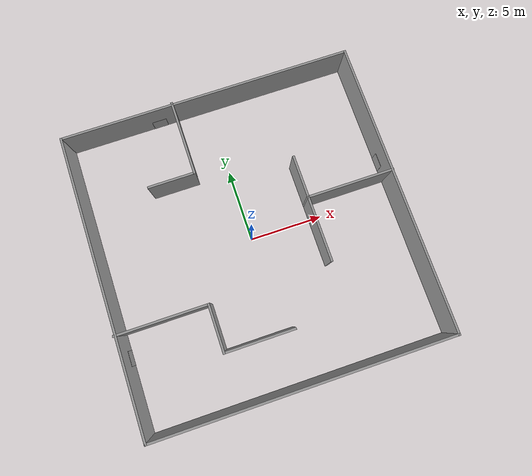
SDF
<?xml version='1.0'?>
<sdf version='1.7'>
  <model name='laboratorio'>
    <link name='Wall_11'>
      <pose>0.044936 9.95132 0 0 -0 0</pose>
      <self_collide>0</self_collide>
      <enable_wind>0</enable_wind>
      <kinematic>0</kinematic>
      <visual name='Wall_11_Visual'>
        <pose>0 0 1.25 0 -0 0</pose>
        <geometry>
          <box>
            <size>20.15 0.15 2.5</size>
          </box>
        </geometry>
        <material>
          <script>
            <uri>file://media/materials/scripts/gazebo.material</uri>
            <name>Gazebo/Grey</name>
          </script>
          <ambient>1 1 1 1</ambient>
          <shader type='pixel'/>
        </material>
        <meta>
          <layer>0</layer>
        </meta>
        <transparency>0</transparency>
        <cast_shadows>1</cast_shadows>
      </visual>
      <collision name='Wall_11_Collision'>
        <laser_retro>0</laser_retro>
        <max_contacts>10</max_contacts>
        <pose>0 0 1.25 0 -0 0</pose>
        <geometry>
          <box>
            <size>20.15 0.15 2.5</size>
          </box>
        </geometry>
        <surface>
          <friction>
            <ode>
              <mu>1</mu>
              <mu2>1</mu2>
              <fdir1>0 0 0</fdir1>
              <slip1>0</slip1>
              <slip2>0</slip2>
            </ode>
            <torsional>
              <coefficient>1</coefficient>
              <patch_radius>0</patch_radius>
              <surface_radius>0</surface_radius>
              <use_patch_radius>1</use_patch_radius>
              <ode>
                <slip>0</slip>
              </ode>
            </torsional>
          </friction>
          <bounce>
            <restitution_coefficient>0</restitution_coefficient>
            <threshold>1e+06</threshold>
          </bounce>
          <contact>
            <collide_without_contact>0</collide_without_contact>
            <collide_without_contact_bitmask>1</collide_without_contact_bitmask>
            <collide_bitmask>1</collide_bitmask>
            <ode>
              <soft_cfm>0</soft_cfm>
              <soft_erp>0.2</soft_erp>
              <kp>1e+13</kp>
              <kd>1</kd>
              <max_vel>0.01</max_vel>
              <min_depth>0</min_depth>
            </ode>
            <bullet>
              <split_impulse>1</split_impulse>
              <split_impulse_penetration_threshold>-0.01</split_impulse_penetration_threshold>
              <soft_cfm>0</soft_cfm>
              <soft_erp>0.2</soft_erp>
              <kp>1e+13</kp>
              <kd>1</kd>
            </bullet>
          </contact>
        </surface>
      </collision>
    </link>
    <link name='Wall_12'>
      <pose>10.0449 -0.048679 0 0 0 -1.5708</pose>
      <self_collide>0</self_collide>
      <enable_wind>0</enable_wind>
      <kinematic>0</kinematic>
      <gravity>1</gravity>
      <inertial>
        <mass>1</mass>
        <pose>0 0 0 0 -0 0</pose>
        <inertia>
          <ixx>1</ixx>
          <ixy>0</ixy>
          <ixz>0</ixz>
          <iyy>1</iyy>
          <iyz>0</iyz>
          <izz>1</izz>
        </inertia>
      </inertial>
      <visual name='Wall_12_Visual'>
        <pose>0 0 1.25 0 -0 0</pose>
        <geometry>
          <box>
            <size>20.15 0.15 2.5</size>
          </box>
        </geometry>
        <material>
          <script>
            <uri>file://media/materials/scripts/gazebo.material</uri>
            <name>Gazebo/Grey</name>
          </script>
          <ambient>1 1 1 1</ambient>
          <shader type='pixel'>
            <normal_map>__default__</normal_map>
          </shader>
        </material>
        <meta>
          <layer>0</layer>
        </meta>
        <transparency>0</transparency>
        <cast_shadows>1</cast_shadows>
      </visual>
      <collision name='Wall_12_Collision'>
        <laser_retro>0</laser_retro>
        <max_contacts>10</max_contacts>
        <pose>0 0 1.25 0 -0 0</pose>
        <geometry>
          <box>
            <size>20.15 0.15 2.5</size>
          </box>
        </geometry>
        <surface>
          <friction>
            <ode>
              <mu>1</mu>
              <mu2>1</mu2>
              <fdir1>0 0 0</fdir1>
              <slip1>0</slip1>
              <slip2>0</slip2>
            </ode>
            <torsional>
              <coefficient>1</coefficient>
              <patch_radius>0</patch_radius>
              <surface_radius>0</surface_radius>
              <use_patch_radius>1</use_patch_radius>
              <ode>
                <slip>0</slip>
              </ode>
            </torsional>
          </friction>
          <bounce>
            <restitution_coefficient>0</restitution_coefficient>
            <threshold>1e+06</threshold>
          </bounce>
          <contact>
            <collide_without_contact>0</collide_without_contact>
            <collide_without_contact_bitmask>1</collide_without_contact_bitmask>
            <collide_bitmask>1</collide_bitmask>
            <ode>
              <soft_cfm>0</soft_cfm>
              <soft_erp>0.2</soft_erp>
              <kp>1e+13</kp>
              <kd>1</kd>
              <max_vel>0.01</max_vel>
              <min_depth>0</min_depth>
            </ode>
            <bullet>
              <split_impulse>1</split_impulse>
              <split_impulse_penetration_threshold>-0.01</split_impulse_penetration_threshold>
              <soft_cfm>0</soft_cfm>
              <soft_erp>0.2</soft_erp>
              <kp>1e+13</kp>
              <kd>1</kd>
            </bullet>
          </contact>
        </surface>
      </collision>
    </link>
    <link name='Wall_14'>
      <pose>-7.01194 -3.43073 0 0 -0 0</pose>
      <self_collide>0</self_collide>
      <enable_wind>0</enable_wind>
      <kinematic>0</kinematic>
      <visual name='Wall_14_Visual'>
        <pose>0 0 1.25 0 -0 0</pose>
        <geometry>
          <box>
            <size>6.25 0.15 2.5</size>
          </box>
        </geometry>
        <material>
          <script>
            <uri>file://media/materials/scripts/gazebo.material</uri>
            <name>Gazebo/Grey</name>
          </script>
          <ambient>1 1 1 1</ambient>
          <shader type='pixel'/>
        </material>
        <meta>
          <layer>0</layer>
        </meta>
        <transparency>0</transparency>
        <cast_shadows>1</cast_shadows>
      </visual>
      <collision name='Wall_14_Collision'>
        <laser_retro>0</laser_retro>
        <max_contacts>10</max_contacts>
        <pose>0 0 1.25 0 -0 0</pose>
        <geometry>
          <box>
            <size>6.25 0.15 2.5</size>
          </box>
        </geometry>
        <surface>
          <friction>
            <ode>
              <mu>1</mu>
              <mu2>1</mu2>
              <fdir1>0 0 0</fdir1>
              <slip1>0</slip1>
              <slip2>0</slip2>
            </ode>
            <torsional>
              <coefficient>1</coefficient>
              <patch_radius>0</patch_radius>
              <surface_radius>0</surface_radius>
              <use_patch_radius>1</use_patch_radius>
              <ode>
                <slip>0</slip>
              </ode>
            </torsional>
          </friction>
          <bounce>
            <restitution_coefficient>0</restitution_coefficient>
            <threshold>1e+06</threshold>
          </bounce>
          <contact>
            <collide_without_contact>0</collide_without_contact>
            <collide_without_contact_bitmask>1</collide_without_contact_bitmask>
            <collide_bitmask>1</collide_bitmask>
            <ode>
              <soft_cfm>0</soft_cfm>
              <soft_erp>0.2</soft_erp>
              <kp>1e+13</kp>
              <kd>1</kd>
              <max_vel>0.01</max_vel>
              <min_depth>0</min_depth>
            </ode>
            <bullet>
              <split_impulse>1</split_impulse>
              <split_impulse_penetration_threshold>-0.01</split_impulse_penetration_threshold>
              <soft_cfm>0</soft_cfm>
              <soft_erp>0.2</soft_erp>
              <kp>1e+13</kp>
              <kd>1</kd>
            </bullet>
          </contact>
        </surface>
      </collision>
    </link>
    <link name='Wall_15'>
      <pose>-3.96194 -4.98073 0 0 0 -1.5708</pose>
      <self_collide>0</self_collide>
      <enable_wind>0</enable_wind>
      <kinematic>0</kinematic>
      <gravity>1</gravity>
      <inertial>
        <mass>1</mass>
        <pose>0 0 0 0 -0 0</pose>
        <inertia>
          <ixx>1</ixx>
          <ixy>0</ixy>
          <ixz>0</ixz>
          <iyy>1</iyy>
          <iyz>0</iyz>
          <izz>1</izz>
        </inertia>
      </inertial>
      <visual name='Wall_15_Visual'>
        <pose>0 0 1.25 0 -0 0</pose>
        <geometry>
          <box>
            <size>3.25 0.15 2.5</size>
          </box>
        </geometry>
        <material>
          <script>
            <uri>file://media/materials/scripts/gazebo.material</uri>
            <name>Gazebo/Grey</name>
          </script>
          <ambient>1 1 1 1</ambient>
          <shader type='pixel'>
            <normal_map>__default__</normal_map>
          </shader>
        </material>
        <meta>
          <layer>0</layer>
        </meta>
        <transparency>0</transparency>
        <cast_shadows>1</cast_shadows>
      </visual>
      <collision name='Wall_15_Collision'>
        <laser_retro>0</laser_retro>
        <max_contacts>10</max_contacts>
        <pose>0 0 1.25 0 -0 0</pose>
        <geometry>
          <box>
            <size>3.25 0.15 2.5</size>
          </box>
        </geometry>
        <surface>
          <friction>
            <ode>
              <mu>1</mu>
              <mu2>1</mu2>
              <fdir1>0 0 0</fdir1>
              <slip1>0</slip1>
              <slip2>0</slip2>
            </ode>
            <torsional>
              <coefficient>1</coefficient>
              <patch_radius>0</patch_radius>
              <surface_radius>0</surface_radius>
              <use_patch_radius>1</use_patch_radius>
              <ode>
                <slip>0</slip>
              </ode>
            </torsional>
          </friction>
          <bounce>
            <restitution_coefficient>0</restitution_coefficient>
            <threshold>1e+06</threshold>
          </bounce>
          <contact>
            <collide_without_contact>0</collide_without_contact>
            <collide_without_contact_bitmask>1</collide_without_contact_bitmask>
            <collide_bitmask>1</collide_bitmask>
            <ode>
              <soft_cfm>0</soft_cfm>
              <soft_erp>0.2</soft_erp>
              <kp>1e+13</kp>
              <kd>1</kd>
              <max_vel>0.01</max_vel>
              <min_depth>0</min_depth>
            </ode>
            <bullet>
              <split_impulse>1</split_impulse>
              <split_impulse_penetration_threshold>-0.01</split_impulse_penetration_threshold>
              <soft_cfm>0</soft_cfm>
              <soft_erp>0.2</soft_erp>
              <kp>1e+13</kp>
              <kd>1</kd>
            </bullet>
          </contact>
        </surface>
      </collision>
    </link>
    <link name='Wall_16'>
      <pose>-1.66194 -6.53073 0 0 -0 0</pose>
      <self_collide>0</self_collide>
      <enable_wind>0</enable_wind>
      <kinematic>0</kinematic>
      <visual name='Wall_16_Visual'>
        <pose>0 0 1.25 0 -0 0</pose>
        <geometry>
          <box>
            <size>4.75 0.15 2.5</size>
          </box>
        </geometry>
        <material>
          <script>
            <uri>file://media/materials/scripts/gazebo.material</uri>
            <name>Gazebo/Grey</name>
          </script>
          <ambient>1 1 1 1</ambient>
          <shader type='pixel'/>
        </material>
        <meta>
          <layer>0</layer>
        </meta>
        <transparency>0</transparency>
        <cast_shadows>1</cast_shadows>
      </visual>
      <collision name='Wall_16_Collision'>
        <laser_retro>0</laser_retro>
        <max_contacts>10</max_contacts>
        <pose>0 0 1.25 0 -0 0</pose>
        <geometry>
          <box>
            <size>4.75 0.15 2.5</size>
          </box>
        </geometry>
        <surface>
          <friction>
            <ode>
              <mu>1</mu>
              <mu2>1</mu2>
              <fdir1>0 0 0</fdir1>
              <slip1>0</slip1>
              <slip2>0</slip2>
            </ode>
            <torsional>
              <coefficient>1</coefficient>
              <patch_radius>0</patch_radius>
              <surface_radius>0</surface_radius>
              <use_patch_radius>1</use_patch_radius>
              <ode>
                <slip>0</slip>
              </ode>
            </torsional>
          </friction>
          <bounce>
            <restitution_coefficient>0</restitution_coefficient>
            <threshold>1e+06</threshold>
          </bounce>
          <contact>
            <collide_without_contact>0</collide_without_contact>
            <collide_without_contact_bitmask>1</collide_without_contact_bitmask>
            <collide_bitmask>1</collide_bitmask>
            <ode>
              <soft_cfm>0</soft_cfm>
              <soft_erp>0.2</soft_erp>
              <kp>1e+13</kp>
              <kd>1</kd>
              <max_vel>0.01</max_vel>
              <min_depth>0</min_depth>
            </ode>
            <bullet>
              <split_impulse>1</split_impulse>
              <split_impulse_penetration_threshold>-0.01</split_impulse_penetration_threshold>
              <soft_cfm>0</soft_cfm>
              <soft_erp>0.2</soft_erp>
              <kp>1e+13</kp>
              <kd>1</kd>
            </bullet>
          </contact>
        </surface>
      </collision>
    </link>
    <link name='Wall_18'>
      <pose>7.13694 1.06632 0 0 -0 3.14159</pose>
      <self_collide>0</self_collide>
      <enable_wind>0</enable_wind>
      <kinematic>0</kinematic>
      <visual name='Wall_18_Visual'>
        <pose>0 0 1.25 0 -0 0</pose>
        <geometry>
          <box>
            <size>6 0.15 2.5</size>
          </box>
        </geometry>
        <material>
          <script>
            <uri>file://media/materials/scripts/gazebo.material</uri>
            <name>Gazebo/Grey</name>
          </script>
          <ambient>1 1 1 1</ambient>
          <shader type='pixel'/>
        </material>
        <meta>
          <layer>0</layer>
        </meta>
        <transparency>0</transparency>
        <cast_shadows>1</cast_shadows>
      </visual>
      <collision name='Wall_18_Collision'>
        <laser_retro>0</laser_retro>
        <max_contacts>10</max_contacts>
        <pose>0 0 1.25 0 -0 0</pose>
        <geometry>
          <box>
            <size>6 0.15 2.5</size>
          </box>
        </geometry>
        <surface>
          <friction>
            <ode>
              <mu>1</mu>
              <mu2>1</mu2>
              <fdir1>0 0 0</fdir1>
              <slip1>0</slip1>
              <slip2>0</slip2>
            </ode>
            <torsional>
              <coefficient>1</coefficient>
              <patch_radius>0</patch_radius>
              <surface_radius>0</surface_radius>
              <use_patch_radius>1</use_patch_radius>
              <ode>
                <slip>0</slip>
              </ode>
            </torsional>
          </friction>
          <bounce>
            <restitution_coefficient>0</restitution_coefficient>
            <threshold>1e+06</threshold>
          </bounce>
          <contact>
            <collide_without_contact>0</collide_without_contact>
            <collide_without_contact_bitmask>1</collide_without_contact_bitmask>
            <collide_bitmask>1</collide_bitmask>
            <ode>
              <soft_cfm>0</soft_cfm>
              <soft_erp>0.2</soft_erp>
              <kp>1e+13</kp>
              <kd>1</kd>
              <max_vel>0.01</max_vel>
              <min_depth>0</min_depth>
            </ode>
            <bullet>
              <split_impulse>1</split_impulse>
              <split_impulse_penetration_threshold>-0.01</split_impulse_penetration_threshold>
              <soft_cfm>0</soft_cfm>
              <soft_erp>0.2</soft_erp>
              <kp>1e+13</kp>
              <kd>1</kd>
            </bullet>
          </contact>
        </surface>
      </collision>
    </link>
    <link name='Wall_22'>
      <pose>-2.28499 7.49868 0 0 0 -1.5708</pose>
      <self_collide>0</self_collide>
      <enable_wind>0</enable_wind>
      <kinematic>0</kinematic>
      <visual name='Wall_22_Visual'>
        <pose>0 0 1.25 0 -0 0</pose>
        <geometry>
          <box>
            <size>5.25 0.15 2.5</size>
          </box>
        </geometry>
        <material>
          <script>
            <uri>file://media/materials/scripts/gazebo.material</uri>
            <name>Gazebo/Grey</name>
          </script>
          <ambient>1 1 1 1</ambient>
          <shader type='pixel'/>
        </material>
        <meta>
          <layer>0</layer>
        </meta>
        <transparency>0</transparency>
        <cast_shadows>1</cast_shadows>
      </visual>
      <collision name='Wall_22_Collision'>
        <laser_retro>0</laser_retro>
        <max_contacts>10</max_contacts>
        <pose>0 0 1.25 0 -0 0</pose>
        <geometry>
          <box>
            <size>5.25 0.15 2.5</size>
          </box>
        </geometry>
        <surface>
          <friction>
            <ode>
              <mu>1</mu>
              <mu2>1</mu2>
              <fdir1>0 0 0</fdir1>
              <slip1>0</slip1>
              <slip2>0</slip2>
            </ode>
            <torsional>
              <coefficient>1</coefficient>
              <patch_radius>0</patch_radius>
              <surface_radius>0</surface_radius>
              <use_patch_radius>1</use_patch_radius>
              <ode>
                <slip>0</slip>
              </ode>
            </torsional>
          </friction>
          <bounce>
            <restitution_coefficient>0</restitution_coefficient>
            <threshold>1e+06</threshold>
          </bounce>
          <contact>
            <collide_without_contact>0</collide_without_contact>
            <collide_without_contact_bitmask>1</collide_without_contact_bitmask>
            <collide_bitmask>1</collide_bitmask>
            <ode>
              <soft_cfm>0</soft_cfm>
              <soft_erp>0.2</soft_erp>
              <kp>1e+13</kp>
              <kd>1</kd>
              <max_vel>0.01</max_vel>
              <min_depth>0</min_depth>
            </ode>
            <bullet>
              <split_impulse>1</split_impulse>
              <split_impulse_penetration_threshold>-0.01</split_impulse_penetration_threshold>
              <soft_cfm>0</soft_cfm>
              <soft_erp>0.2</soft_erp>
              <kp>1e+13</kp>
              <kd>1</kd>
            </bullet>
          </contact>
        </surface>
      </collision>
    </link>
    <link name='Wall_23'>
      <pose>-3.83499 4.94868 0 0 -0 3.14159</pose>
      <self_collide>0</self_collide>
      <enable_wind>0</enable_wind>
      <kinematic>0</kinematic>
      <visual name='Wall_23_Visual'>
        <pose>0 0 1.25 0 -0 0</pose>
        <geometry>
          <box>
            <size>3.25 0.15 2.5</size>
          </box>
        </geometry>
        <material>
          <script>
            <uri>file://media/materials/scripts/gazebo.material</uri>
            <name>Gazebo/Grey</name>
          </script>
          <ambient>1 1 1 1</ambient>
          <shader type='pixel'/>
        </material>
        <meta>
          <layer>0</layer>
        </meta>
        <transparency>0</transparency>
        <cast_shadows>1</cast_shadows>
      </visual>
      <collision name='Wall_23_Collision'>
        <laser_retro>0</laser_retro>
        <max_contacts>10</max_contacts>
        <pose>0 0 1.25 0 -0 0</pose>
        <geometry>
          <box>
            <size>3.25 0.15 2.5</size>
          </box>
        </geometry>
        <surface>
          <friction>
            <ode>
              <mu>1</mu>
              <mu2>1</mu2>
              <fdir1>0 0 0</fdir1>
              <slip1>0</slip1>
              <slip2>0</slip2>
            </ode>
            <torsional>
              <coefficient>1</coefficient>
              <patch_radius>0</patch_radius>
              <surface_radius>0</surface_radius>
              <use_patch_radius>1</use_patch_radius>
              <ode>
                <slip>0</slip>
              </ode>
            </torsional>
          </friction>
          <bounce>
            <restitution_coefficient>0</restitution_coefficient>
            <threshold>1e+06</threshold>
          </bounce>
          <contact>
            <collide_without_contact>0</collide_without_contact>
            <collide_without_contact_bitmask>1</collide_without_contact_bitmask>
            <collide_bitmask>1</collide_bitmask>
            <ode>
              <soft_cfm>0</soft_cfm>
              <soft_erp>0.2</soft_erp>
              <kp>1e+13</kp>
              <kd>1</kd>
              <max_vel>0.01</max_vel>
              <min_depth>0</min_depth>
            </ode>
            <bullet>
              <split_impulse>1</split_impulse>
              <split_impulse_penetration_threshold>-0.01</split_impulse_penetration_threshold>
              <soft_cfm>0</soft_cfm>
              <soft_erp>0.2</soft_erp>
              <kp>1e+13</kp>
              <kd>1</kd>
            </bullet>
          </contact>
        </surface>
      </collision>
    </link>
    <link name='Wall_27'>
      <pose>4.21194 -1.10868 0 0 0 -1.5708</pose>
      <self_collide>0</self_collide>
      <enable_wind>0</enable_wind>
      <kinematic>0</kinematic>
      <visual name='Wall_27_Visual'>
        <pose>0 0 1.25 0 -0 0</pose>
        <geometry>
          <box>
            <size>4.5 0.15 2.5</size>
          </box>
        </geometry>
        <material>
          <script>
            <uri>file://media/materials/scripts/gazebo.material</uri>
            <name>Gazebo/Grey</name>
          </script>
          <ambient>1 1 1 1</ambient>
          <shader type='pixel'/>
        </material>
        <meta>
          <layer>0</layer>
        </meta>
        <transparency>0</transparency>
        <cast_shadows>1</cast_shadows>
      </visual>
      <collision name='Wall_27_Collision'>
        <laser_retro>0</laser_retro>
        <max_contacts>10</max_contacts>
        <pose>0 0 1.25 0 -0 0</pose>
        <geometry>
          <box>
            <size>4.5 0.15 2.5</size>
          </box>
        </geometry>
        <surface>
          <friction>
            <ode>
              <mu>1</mu>
              <mu2>1</mu2>
              <fdir1>0 0 0</fdir1>
              <slip1>0</slip1>
              <slip2>0</slip2>
            </ode>
            <torsional>
              <coefficient>1</coefficient>
              <patch_radius>0</patch_radius>
              <surface_radius>0</surface_radius>
              <use_patch_radius>1</use_patch_radius>
              <ode>
                <slip>0</slip>
              </ode>
            </torsional>
          </friction>
          <bounce>
            <restitution_coefficient>0</restitution_coefficient>
            <threshold>1e+06</threshold>
          </bounce>
          <contact>
            <collide_without_contact>0</collide_without_contact>
            <collide_without_contact_bitmask>1</collide_without_contact_bitmask>
            <collide_bitmask>1</collide_bitmask>
            <ode>
              <soft_cfm>0</soft_cfm>
              <soft_erp>0.2</soft_erp>
              <kp>1e+13</kp>
              <kd>1</kd>
              <max_vel>0.01</max_vel>
              <min_depth>0</min_depth>
            </ode>
            <bullet>
              <split_impulse>1</split_impulse>
              <split_impulse_penetration_threshold>-0.01</split_impulse_penetration_threshold>
              <soft_cfm>0</soft_cfm>
              <soft_erp>0.2</soft_erp>
              <kp>1e+13</kp>
              <kd>1</kd>
            </bullet>
          </contact>
        </surface>
      </collision>
    </link>
    <link name='Wall_29'>
      <pose>4.21194 2.49132 0 0 -0 1.5708</pose>
      <self_collide>0</self_collide>
      <enable_wind>0</enable_wind>
      <kinematic>0</kinematic>
      <visual name='Wall_29_Visual'>
        <pose>0 0 1.25 0 -0 0</pose>
        <geometry>
          <box>
            <size>3 0.15 2.5</size>
          </box>
        </geometry>
        <material>
          <script>
            <uri>file://media/materials/scripts/gazebo.material</uri>
            <name>Gazebo/Grey</name>
          </script>
          <ambient>1 1 1 1</ambient>
          <shader type='pixel'/>
        </material>
        <meta>
          <layer>0</layer>
        </meta>
        <transparency>0</transparency>
        <cast_shadows>1</cast_shadows>
      </visual>
      <collision name='Wall_29_Collision'>
        <laser_retro>0</laser_retro>
        <max_contacts>10</max_contacts>
        <pose>0 0 1.25 0 -0 0</pose>
        <geometry>
          <box>
            <size>3 0.15 2.5</size>
          </box>
        </geometry>
        <surface>
          <friction>
            <ode>
              <mu>1</mu>
              <mu2>1</mu2>
              <fdir1>0 0 0</fdir1>
              <slip1>0</slip1>
              <slip2>0</slip2>
            </ode>
            <torsional>
              <coefficient>1</coefficient>
              <patch_radius>0</patch_radius>
              <surface_radius>0</surface_radius>
              <use_patch_radius>1</use_patch_radius>
              <ode>
                <slip>0</slip>
              </ode>
            </torsional>
          </friction>
          <bounce>
            <restitution_coefficient>0</restitution_coefficient>
            <threshold>1e+06</threshold>
          </bounce>
          <contact>
            <collide_without_contact>0</collide_without_contact>
            <collide_without_contact_bitmask>1</collide_without_contact_bitmask>
            <collide_bitmask>1</collide_bitmask>
            <ode>
              <soft_cfm>0</soft_cfm>
              <soft_erp>0.2</soft_erp>
              <kp>1e+13</kp>
              <kd>1</kd>
              <max_vel>0.01</max_vel>
              <min_depth>0</min_depth>
            </ode>
            <bullet>
              <split_impulse>1</split_impulse>
              <split_impulse_penetration_threshold>-0.01</split_impulse_penetration_threshold>
              <soft_cfm>0</soft_cfm>
              <soft_erp>0.2</soft_erp>
              <kp>1e+13</kp>
              <kd>1</kd>
            </bullet>
          </contact>
        </surface>
      </collision>
    </link>
    <link name='Wall_4'>
      <pose>-9.95506 -0.048679 0 0 0 -1.5708</pose>
      <self_collide>0</self_collide>
      <enable_wind>0</enable_wind>
      <kinematic>0</kinematic>
      <visual name='Wall_4_Visual'>
        <pose>0 0 1.25 0 -0 0</pose>
        <geometry>
          <box>
            <size>20.15 0.15 2.5</size>
          </box>
        </geometry>
        <material>
          <script>
            <uri>file://media/materials/scripts/gazebo.material</uri>
            <name>Gazebo/Grey</name>
          </script>
          <ambient>1 1 1 1</ambient>
          <shader type='pixel'/>
        </material>
        <meta>
          <layer>0</layer>
        </meta>
        <transparency>0</transparency>
        <cast_shadows>1</cast_shadows>
      </visual>
      <collision name='Wall_4_Collision'>
        <laser_retro>0</laser_retro>
        <max_contacts>10</max_contacts>
        <pose>0 0 1.25 0 -0 0</pose>
        <geometry>
          <box>
            <size>20.15 0.15 2.5</size>
          </box>
        </geometry>
        <surface>
          <friction>
            <ode>
              <mu>1</mu>
              <mu2>1</mu2>
              <fdir1>0 0 0</fdir1>
              <slip1>0</slip1>
              <slip2>0</slip2>
            </ode>
            <torsional>
              <coefficient>1</coefficient>
              <patch_radius>0</patch_radius>
              <surface_radius>0</surface_radius>
              <use_patch_radius>1</use_patch_radius>
              <ode>
                <slip>0</slip>
              </ode>
            </torsional>
          </friction>
          <bounce>
            <restitution_coefficient>0</restitution_coefficient>
            <threshold>1e+06</threshold>
          </bounce>
          <contact>
            <collide_without_contact>0</collide_without_contact>
            <collide_without_contact_bitmask>1</collide_without_contact_bitmask>
            <collide_bitmask>1</collide_bitmask>
            <ode>
              <soft_cfm>0</soft_cfm>
              <soft_erp>0.2</soft_erp>
              <kp>1e+13</kp>
              <kd>1</kd>
              <max_vel>0.01</max_vel>
              <min_depth>0</min_depth>
            </ode>
            <bullet>
              <split_impulse>1</split_impulse>
              <split_impulse_penetration_threshold>-0.01</split_impulse_penetration_threshold>
              <soft_cfm>0</soft_cfm>
              <soft_erp>0.2</soft_erp>
              <kp>1e+13</kp>
              <kd>1</kd>
            </bullet>
          </contact>
        </surface>
      </collision>
    </link>
    <link name='Wall_6'>
      <pose>0.044936 -10.0487 0 0 -0 0</pose>
      <self_collide>0</self_collide>
      <enable_wind>0</enable_wind>
      <kinematic>0</kinematic>
      <visual name='Wall_6_Visual'>
        <pose>0 0 1.25 0 -0 0</pose>
        <geometry>
          <box>
            <size>20.15 0.15 2.5</size>
          </box>
        </geometry>
        <material>
          <script>
            <uri>file://media/materials/scripts/gazebo.material</uri>
            <name>Gazebo/Grey</name>
          </script>
          <ambient>1 1 1 1</ambient>
          <shader type='pixel'/>
        </material>
        <meta>
          <layer>0</layer>
        </meta>
        <transparency>0</transparency>
        <cast_shadows>1</cast_shadows>
      </visual>
      <collision name='Wall_6_Collision'>
        <laser_retro>0</laser_retro>
        <max_contacts>10</max_contacts>
        <pose>0 0 1.25 0 -0 0</pose>
        <geometry>
          <box>
            <size>20.15 0.15 2.5</size>
          </box>
        </geometry>
        <surface>
          <friction>
            <ode>
              <mu>1</mu>
              <mu2>1</mu2>
              <fdir1>0 0 0</fdir1>
              <slip1>0</slip1>
              <slip2>0</slip2>
            </ode>
            <torsional>
              <coefficient>1</coefficient>
              <patch_radius>0</patch_radius>
              <surface_radius>0</surface_radius>
              <use_patch_radius>1</use_patch_radius>
              <ode>
                <slip>0</slip>
              </ode>
            </torsional>
          </friction>
          <bounce>
            <restitution_coefficient>0</restitution_coefficient>
            <threshold>1e+06</threshold>
          </bounce>
          <contact>
            <collide_without_contact>0</collide_without_contact>
            <collide_without_contact_bitmask>1</collide_without_contact_bitmask>
            <collide_bitmask>1</collide_bitmask>
            <ode>
              <soft_cfm>0</soft_cfm>
              <soft_erp>0.2</soft_erp>
              <kp>1e+13</kp>
              <kd>1</kd>
              <max_vel>0.01</max_vel>
              <min_depth>0</min_depth>
            </ode>
            <bullet>
              <split_impulse>1</split_impulse>
              <split_impulse_penetration_threshold>-0.01</split_impulse_penetration_threshold>
              <soft_cfm>0</soft_cfm>
              <soft_erp>0.2</soft_erp>
              <kp>1e+13</kp>
              <kd>1</kd>
            </bullet>
          </contact>
        </surface>
      </collision>
    </link>
    <link name='square_1'>
      <inertial>
        <mass>1</mass>
        <inertia>
          <ixx>0.166667</ixx>
          <ixy>0</ixy>
          <ixz>0</ixz>
          <iyy>0.166667</iyy>
          <iyz>0</iyz>
          <izz>0.166667</izz>
        </inertia>
        <pose>0 0 0 0 -0 0</pose>
      </inertial>
      <pose>-9.87659 -5.04247 0.5 0 -0 0</pose>
      <self_collide>0</self_collide>
      <enable_wind>0</enable_wind>
      <kinematic>0</kinematic>
      <gravity>1</gravity>
      <visual name='visual'>
        <pose>0 0 0 0 -0 0</pose>
        <geometry>
          <box>
            <size>0.01 1 1</size>
          </box>
        </geometry>
        <material>
          <lighting>1</lighting>
          <script>
            <uri>file://media/materials/scripts/gazebo.material</uri>
            <name>Gazebo/Grey</name>
          </script>
          <shader type='pixel'>
            <normal_map>__default__</normal_map>
          </shader>
          <ambient>0.3 0.3 0.3 1</ambient>
          <diffuse>0.7 0.7 0.7 1</diffuse>
          <specular>0.01 0.01 0.01 1</specular>
          <emissive>0 0 0 1</emissive>
        </material>
        <transparency>0</transparency>
        <cast_shadows>1</cast_shadows>
      </visual>
      <collision name='collision'>
        <laser_retro>0</laser_retro>
        <max_contacts>10</max_contacts>
        <pose>0 0 0 0 -0 0</pose>
        <geometry>
          <box>
            <size>0.01 1 1</size>
          </box>
        </geometry>
        <surface>
          <friction>
            <ode>
              <mu>1</mu>
              <mu2>1</mu2>
              <fdir1>0 0 0</fdir1>
              <slip1>0</slip1>
              <slip2>0</slip2>
            </ode>
            <torsional>
              <coefficient>1</coefficient>
              <patch_radius>0</patch_radius>
              <surface_radius>0</surface_radius>
              <use_patch_radius>1</use_patch_radius>
              <ode>
                <slip>0</slip>
              </ode>
            </torsional>
          </friction>
          <bounce>
            <restitution_coefficient>0</restitution_coefficient>
            <threshold>1e+06</threshold>
          </bounce>
          <contact>
            <collide_without_contact>0</collide_without_contact>
            <collide_without_contact_bitmask>1</collide_without_contact_bitmask>
            <collide_bitmask>1</collide_bitmask>
            <ode>
              <soft_cfm>0</soft_cfm>
              <soft_erp>0.2</soft_erp>
              <kp>1e+13</kp>
              <kd>1</kd>
              <max_vel>0.01</max_vel>
              <min_depth>0</min_depth>
            </ode>
            <bullet>
              <split_impulse>1</split_impulse>
              <split_impulse_penetration_threshold>-0.01</split_impulse_penetration_threshold>
              <soft_cfm>0</soft_cfm>
              <soft_erp>0.2</soft_erp>
              <kp>1e+13</kp>
              <kd>1</kd>
            </bullet>
          </contact>
        </surface>
      </collision>
    </link>
    <link name='square_1_clone'>
      <inertial>
        <mass>1</mass>
        <inertia>
          <ixx>0.166667</ixx>
          <ixy>0</ixy>
          <ixz>0</ixz>
          <iyy>0.166667</iyy>
          <iyz>0</iyz>
          <izz>0.166667</izz>
        </inertia>
        <pose>0 0 0 0 -0 0</pose>
      </inertial>
      <pose>-3.51888 9.87089 0.5 0 0 -1.5708</pose>
      <self_collide>0</self_collide>
      <enable_wind>0</enable_wind>
      <kinematic>0</kinematic>
      <gravity>1</gravity>
      <visual name='visual'>
        <pose>0 0 0 0 -0 0</pose>
        <geometry>
          <box>
            <size>0.01 1 1</size>
          </box>
        </geometry>
        <material>
          <lighting>1</lighting>
          <script>
            <uri>file://media/materials/scripts/gazebo.material</uri>
            <name>Gazebo/Grey</name>
          </script>
          <shader type='pixel'>
            <normal_map>__default__</normal_map>
          </shader>
          <ambient>0.3 0.3 0.3 1</ambient>
          <diffuse>0.7 0.7 0.7 1</diffuse>
          <specular>0.01 0.01 0.01 1</specular>
          <emissive>0 0 0 1</emissive>
        </material>
        <transparency>0</transparency>
        <cast_shadows>1</cast_shadows>
      </visual>
      <collision name='collision'>
        <laser_retro>0</laser_retro>
        <max_contacts>10</max_contacts>
        <pose>0 0 0 0 -0 0</pose>
        <geometry>
          <box>
            <size>0.01 1 1</size>
          </box>
        </geometry>
        <surface>
          <friction>
            <ode>
              <mu>1</mu>
              <mu2>1</mu2>
              <fdir1>0 0 0</fdir1>
              <slip1>0</slip1>
              <slip2>0</slip2>
            </ode>
            <torsional>
              <coefficient>1</coefficient>
              <patch_radius>0</patch_radius>
              <surface_radius>0</surface_radius>
              <use_patch_radius>1</use_patch_radius>
              <ode>
                <slip>0</slip>
              </ode>
            </torsional>
          </friction>
          <bounce>
            <restitution_coefficient>0</restitution_coefficient>
            <threshold>1e+06</threshold>
          </bounce>
          <contact>
            <collide_without_contact>0</collide_without_contact>
            <collide_without_contact_bitmask>1</collide_without_contact_bitmask>
            <collide_bitmask>1</collide_bitmask>
            <ode>
              <soft_cfm>0</soft_cfm>
              <soft_erp>0.2</soft_erp>
              <kp>1e+13</kp>
              <kd>1</kd>
              <max_vel>0.01</max_vel>
              <min_depth>0</min_depth>
            </ode>
            <bullet>
              <split_impulse>1</split_impulse>
              <split_impulse_penetration_threshold>-0.01</split_impulse_penetration_threshold>
              <soft_cfm>0</soft_cfm>
              <soft_erp>0.2</soft_erp>
              <kp>1e+13</kp>
              <kd>1</kd>
            </bullet>
          </contact>
        </surface>
      </collision>
    </link>
    <link name='square_1_clone_0'>
      <inertial>
        <mass>1</mass>
        <inertia>
          <ixx>0.166667</ixx>
          <ixy>0</ixy>
          <ixz>0</ixz>
          <iyy>0.166667</iyy>
          <iyz>0</iyz>
          <izz>0.166667</izz>
        </inertia>
        <pose>0 0 0 0 -0 0</pose>
      </inertial>
      <pose>9.96299 2.32826 0.5 0 -0 0</pose>
      <self_collide>0</self_collide>
      <enable_wind>0</enable_wind>
      <kinematic>0</kinematic>
      <gravity>1</gravity>
      <visual name='visual'>
        <pose>0 0 0 0 -0 0</pose>
        <geometry>
          <box>
            <size>0.01 1 1</size>
          </box>
        </geometry>
        <material>
          <lighting>1</lighting>
          <script>
            <uri>file://media/materials/scripts/gazebo.material</uri>
            <name>Gazebo/Grey</name>
          </script>
          <shader type='pixel'>
            <normal_map>__default__</normal_map>
          </shader>
          <ambient>0.3 0.3 0.3 1</ambient>
          <diffuse>0.7 0.7 0.7 1</diffuse>
          <specular>0.01 0.01 0.01 1</specular>
          <emissive>0 0 0 1</emissive>
        </material>
        <transparency>0</transparency>
        <cast_shadows>1</cast_shadows>
      </visual>
      <collision name='collision'>
        <laser_retro>0</laser_retro>
        <max_contacts>10</max_contacts>
        <pose>0 0 0 0 -0 0</pose>
        <geometry>
          <box>
            <size>0.01 1 1</size>
          </box>
        </geometry>
        <surface>
          <friction>
            <ode>
              <mu>1</mu>
              <mu2>1</mu2>
              <fdir1>0 0 0</fdir1>
              <slip1>0</slip1>
              <slip2>0</slip2>
            </ode>
            <torsional>
              <coefficient>1</coefficient>
              <patch_radius>0</patch_radius>
              <surface_radius>0</surface_radius>
              <use_patch_radius>1</use_patch_radius>
              <ode>
                <slip>0</slip>
              </ode>
            </torsional>
          </friction>
          <bounce>
            <restitution_coefficient>0</restitution_coefficient>
            <threshold>1e+06</threshold>
          </bounce>
          <contact>
            <collide_without_contact>0</collide_without_contact>
            <collide_without_contact_bitmask>1</collide_without_contact_bitmask>
            <collide_bitmask>1</collide_bitmask>
            <ode>
              <soft_cfm>0</soft_cfm>
              <soft_erp>0.2</soft_erp>
              <kp>1e+13</kp>
              <kd>1</kd>
              <max_vel>0.01</max_vel>
              <min_depth>0</min_depth>
            </ode>
            <bullet>
              <split_impulse>1</split_impulse>
              <split_impulse_penetration_threshold>-0.01</split_impulse_penetration_threshold>
              <soft_cfm>0</soft_cfm>
              <soft_erp>0.2</soft_erp>
              <kp>1e+13</kp>
              <kd>1</kd>
            </bullet>
          </contact>
        </surface>
      </collision>
    </link>
    <static>1</static>
    <allow_auto_disable>1</allow_auto_disable>
  </model>
</sdf>
